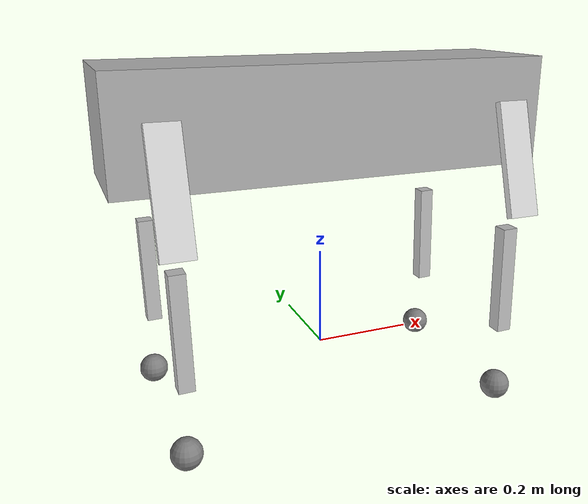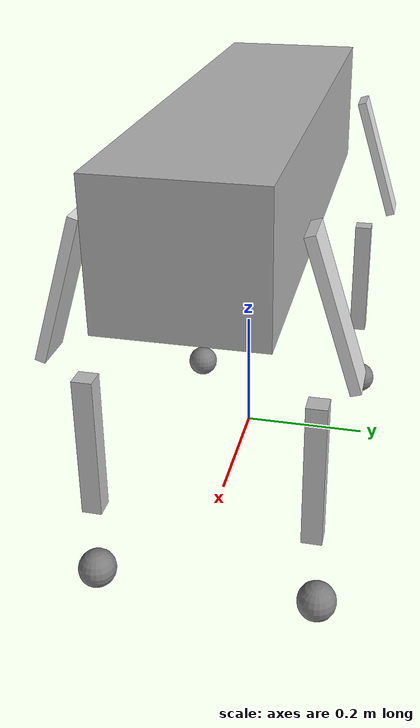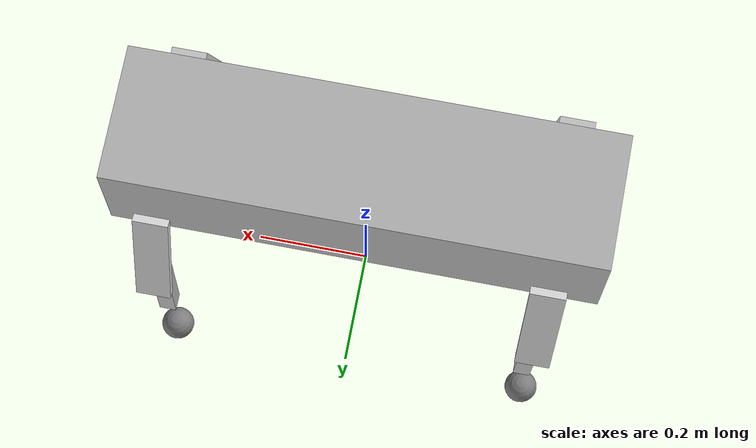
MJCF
<mujoco model="m1_pointfoot_candidate">
  <compiler angle="radian" autolimits="true" />
  <worldbody>
    <body name="base_link" pos="0 0 0.5">
      <inertial pos="-0.001406 0.00345 -0.004835" quat="-0.00434043 0.706832 -0.00540402 0.707347" mass="17.033" diaginertia="0.695866 0.661855 0.0928814" />
      <freejoint />
      <site name="imu" pos="0.0 0 0.0" />
      <body name="FAR_ABAD_LINK" pos="0.2698 -0.065 0">
        <inertial pos="0.033776 -0.02146 9.6941e-07" quat="0.351949 0.351975 0.613287 0.613289" mass="0.19789" diaginertia="0.00025478 0.00020921 0.00011958" />
        <joint name="FAR_ABAD_JOINT" pos="0 0 0" axis="1 0 0" range="-0.697 0.523" actuatorfrcrange="-150 150" />
        <body name="FAR_HIP_LINK" pos="0.0587 -0.045 0">
          <inertial pos="-3.2e-05 -0.065021 -0.128154" quat="0.703257 -0.0677607 0.068164 0.704409" mass="2.8754" diaginertia="0.0456037 0.045202 0.00275532" />
          <joint name="FAR_HIP_JOINT" pos="0 0 0" axis="0 1 0" range="-2.442 2.791" actuatorfrcrange="-150 150" />
          <geom size="0.03 0.0075 0.11" pos="0 -0.07 -0.1" quat="0.988771 -0.149438 0 0" type="box" rgba="0.84706 0.84706 0.84706 1" />
          <body name="FAR_KNEE_LINK" pos="0 -0.0522 -0.26">
            <inertial pos="1.1e-05 0.004286 -0.115691" quat="0.707101 -0.000811046 0.000666189 0.707112" mass="0.86312" diaginertia="0.01053 0.01024 0.000477956" />
            <joint name="FAR_KNEE_JOINT" pos="0 0 0" axis="0 1 0" range="-2.791 2.791" actuatorfrcrange="-150 150" />
            <geom size="0.015 0.015 0.11" pos="0.005 0 -0.09" quat="0.99995 0 -0.00999983 0" type="box" rgba="0.75294 0.75294 0.75294 1" />
            <body name="FAR_FOOT_LINK" pos="0 -0.0088 -0.325">
              <inertial pos="0 -0.039394 4.2e-05" quat="0.5 0.5 0.5 0.5" mass="1.5113" diaginertia="0.004202 0.002606 0.002603" />
              <geom name="FAR" type="sphere" size="0.03" pos="0 0 0" friction="0.8 0.02 0.01" condim="6" priority="1" solimp="0.015 1 0.022" />
            </body>
          </body>
        </body>
      </body>
      <body name="FBL_ABAD_LINK" pos="0.2698 0.065 0">
        <inertial pos="0.033776 0.02146 -9.6941e-07" quat="0.613283 0.613294 0.351948 0.351976" mass="0.19789" diaginertia="0.00025478 0.00020921 0.00011958" />
        <joint name="FBL_ABAD_JOINT" pos="0 0 0" axis="1 0 0" range="-0.523 0.697" actuatorfrcrange="-150 150" />
        <body name="FBL_HIP_LINK" pos="0.0587 0.045 0">
          <inertial pos="3.7e-05 0.065021 -0.128154" quat="0.702733 0.067692 -0.0682323 0.704931" mass="2.8754" diaginertia="0.0456037 0.045202 0.00275532" />
          <joint name="FBL_HIP_JOINT" pos="0 0 0" axis="0 1 0" range="-2.442 2.791" actuatorfrcrange="-150 150" />
          <geom size="0.03 0.0075 0.11" pos="0 0.07 -0.1" quat="0.988771 0.149438 0 0" type="box" rgba="0.84706 0.84706 0.84706 1" />
          <body name="FBL_KNEE_LINK" pos="1.113e-05 0.0522 -0.26" quat="1 0 -2.14045e-05 0">
            <inertial pos="-1.1e-05 -0.004286 -0.115691" quat="0.707101 0.000811046 -0.000666189 0.707112" mass="0.86312" diaginertia="0.01053 0.01024 0.000477956" />
            <joint name="FBL_KNEE_JOINT" pos="0 0 0" axis="0 1 0" range="-2.791 2.791" actuatorfrcrange="-150 150" />
            <geom size="0.015 0.015 0.11" pos="0.005 0 -0.09" quat="0.99995 0 -0.00999983 0" type="box" rgba="0.75294 0.75294 0.75294 1" />
            <body name="FBL_FOOT_LINK" pos="0 0.0088 -0.325">
              <inertial pos="0 0.039394 4.1863e-05" quat="0.5 0.5 0.5 0.5" mass="1.5113" diaginertia="0.004202 0.002606 0.002603" />
              <geom name="FBL" type="sphere" size="0.03" pos="0 0 0" friction="0.8 0.02 0.01" condim="6" priority="1" solimp="0.015 1 0.022" />
            </body>
          </body>
        </body>
      </body>
      <body name="RAR_ABAD_LINK" pos="-0.2698 -0.065 0">
        <inertial pos="-0.033776 -0.02146 -9.6931e-07" quat="0.613283 0.613294 0.351948 0.351976" mass="0.19789" diaginertia="0.00025478 0.00020921 0.00011958" />
        <joint name="RAR_ABAD_JOINT" pos="0 0 0" axis="1 0 0" range="-0.697 0.523" actuatorfrcrange="-150 150" />
        <body name="RAR_HIP_LINK" pos="-0.0587 -0.045 0">
          <inertial pos="-3.7e-05 -0.065021 -0.128154" quat="0.702733 -0.067692 0.0682323 0.704931" mass="2.8754" diaginertia="0.0456037 0.045202 0.00275532" />
          <joint name="RAR_HIP_JOINT" pos="0 0 0" axis="0 1 0" range="-2.791 2.442" actuatorfrcrange="-150 150" />
          <geom size="0.03 0.0075 0.11" pos="0 -0.07 -0.1" quat="0.988771 -0.149438 0 0" type="box" rgba="0.847059 0.847059 0.847059 1" />
          <body name="RAR_KNEE_LINK" pos="-1.113e-05 -0.0522 -0.26" quat="1 0 2.14045e-05 0">
            <inertial pos="1.1e-05 0.004242 -0.116154" quat="0.7071 -0.000956292 0.000810754 0.707112" mass="0.85979" diaginertia="0.0104791 0.010191 0.000474937" />
            <joint name="RAR_KNEE_JOINT" pos="0 0 0" axis="0 1 0" range="-2.791 2.791" actuatorfrcrange="-150 150" />
            <geom size="0.015 0.015 0.11" pos="0.005 0 -0.09" quat="0.99995 0 -0.00999983 0" type="box" rgba="0.75294 0.75294 0.75294 1" />
            <body name="RAR_FOOT_LINK" pos="0 -0.0088 -0.325">
              <inertial pos="0 -0.039394 4.1868e-05" quat="0.5 0.5 0.5 0.5" mass="1.5113" diaginertia="0.004202 0.002606 0.002603" />
              <geom name="RAR" type="sphere" size="0.03" pos="0 0 0" friction="0.8 0.02 0.01" condim="6" priority="1" solimp="0.015 1 0.022" />
            </body>
          </body>
        </body>
      </body>
      <body name="RBL_ABAD_LINK" pos="-0.2698 0.065 0">
        <inertial pos="-0.033776 0.02146 9.6918e-07" quat="0.351949 0.351975 0.613287 0.613289" mass="0.19789" diaginertia="0.00025478 0.00020921 0.00011958" />
        <joint name="RBL_ABAD_JOINT" pos="0 0 0" axis="1 0 0" range="-0.523 0.697" actuatorfrcrange="-150 150" />
        <body name="RBL_HIP_LINK" pos="-0.0587 0.045 0">
          <inertial pos="3.7e-05 0.065021 -0.128154" quat="0.702733 0.067692 -0.0682323 0.704931" mass="2.8754" diaginertia="0.0456037 0.045202 0.00275532" />
          <joint name="RBL_HIP_JOINT" pos="0 0 0" axis="0 1 0" range="-2.791 2.442" actuatorfrcrange="-150 150" />
          <geom size="0.03 0.0075 0.11" pos="0 0.07 -0.1" quat="0.988771 0.149438 0 0" type="box" rgba="0.84706 0.84706 0.84706 1" />
          <body name="RBL_KNEE_LINK" pos="1.1131e-05 0.0522 -0.26" quat="1 0 -2.14055e-05 0">
            <inertial pos="-1.1e-05 -0.004286 -0.115691" quat="0.707101 0.000811046 -0.000666189 0.707112" mass="0.86312" diaginertia="0.01053 0.01024 0.000477956" />
            <joint name="RBL_KNEE_JOINT" pos="0 0 0" axis="0 1 0" range="-2.791 2.791" actuatorfrcrange="-150 150" />
            <geom size="0.015 0.015 0.11" pos="0.005 0 -0.09" quat="0.99995 0 -0.00999983 0" type="box" rgba="0.752941 0.752941 0.752941 1" />
            <body name="RBL_FOOT_LINK" pos="0 0.0088 -0.325">
              <inertial pos="0 0.039394 4.186e-05" quat="0.5 0.5 0.5 0.5" mass="1.5113" diaginertia="0.004202 0.002606 0.002603" />
              <geom name="RBL" type="sphere" size="0.03" pos="0 0 0" friction="0.8 0.02 0.01" condim="6" priority="1" solimp="0.015 1 0.022" />
            </body>
          </body>
        </body>
      </body>
      <geom type="box" size="0.4167 0.1151 0.1041" pos="0 0 -0.02" rgba="0.7 0.7 0.7 1" />
    </body>
  </worldbody>
  <actuator>
    <motor name="FAR_ABAD_LINK" joint="FAR_ABAD_JOINT" ctrlrange="-150 150" ctrllimited="true" />
    <motor name="FAR_HIP_LINK" joint="FAR_HIP_JOINT" ctrlrange="-150 150" ctrllimited="true" />
    <motor name="FAR_KNEE_LINK" joint="FAR_KNEE_JOINT" ctrlrange="-150 150" ctrllimited="true" />
    <motor name="FBL_ABAD_LINK" joint="FBL_ABAD_JOINT" ctrlrange="-150 150" ctrllimited="true" />
    <motor name="FBL_HIP_LINK" joint="FBL_HIP_JOINT" ctrlrange="-150 150" ctrllimited="true" />
    <motor name="FBL_KNEE_LINK" joint="FBL_KNEE_JOINT" ctrlrange="-150 150" ctrllimited="true" />
    <motor name="RAR_ABAD_LINK" joint="RAR_ABAD_JOINT" ctrlrange="-150 150" ctrllimited="true" />
    <motor name="RAR_HIP_LINK" joint="RAR_HIP_JOINT" ctrlrange="-150 150" ctrllimited="true" />
    <motor name="RAR_KNEE_LINK" joint="RAR_KNEE_JOINT" ctrlrange="-150 150" ctrllimited="true" />
    <motor name="RBL_ABAD_LINK" joint="RBL_ABAD_JOINT" ctrlrange="-150 150" ctrllimited="true" />
    <motor name="RBL_HIP_LINK" joint="RBL_HIP_JOINT" ctrlrange="-150 150" ctrllimited="true" />
    <motor name="RBL_KNEE_LINK" joint="RBL_KNEE_JOINT" ctrlrange="-150 150" ctrllimited="true" />
  </actuator>
  <sensor>
    <accelerometer name="imu_acc" site="imu" />
    <gyro name="imu_gyro" site="imu" />
    <framequat name="base_quat" objtype="site" objname="imu" />
    <framelinvel name="base_linvel" objtype="site" objname="imu" />
  </sensor>
  <keyframe>
    <key name="stand" qpos="0 0 0.42 1 0 0 0 0 0.8 -1.5 0 0.8 -1.5 0 0.8 -1.5 0 0.8 -1.5" />
  </keyframe>
</mujoco>
